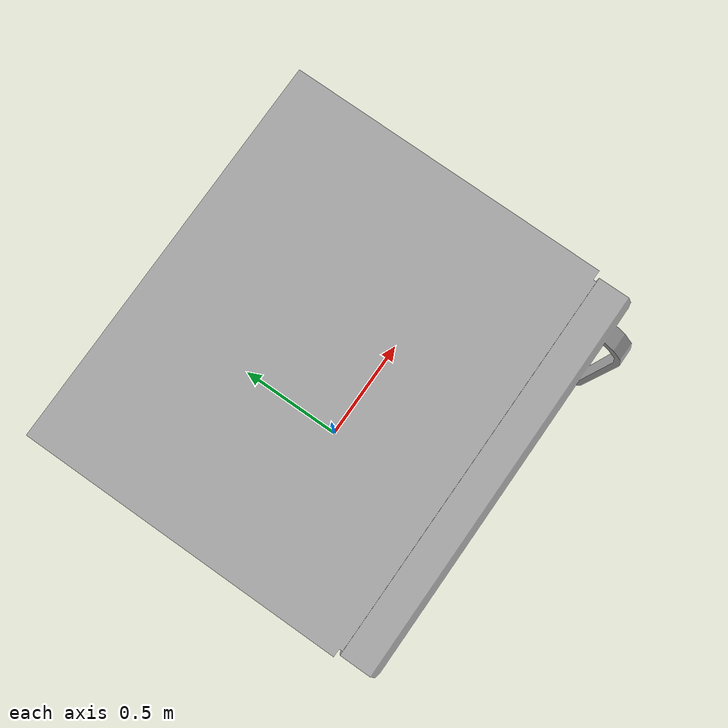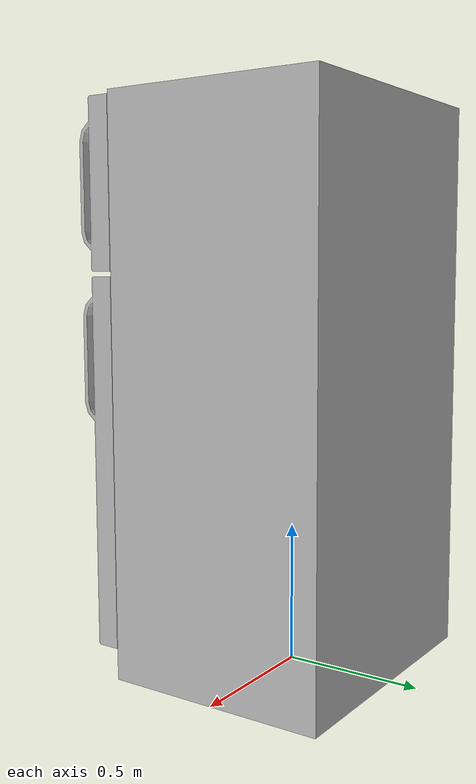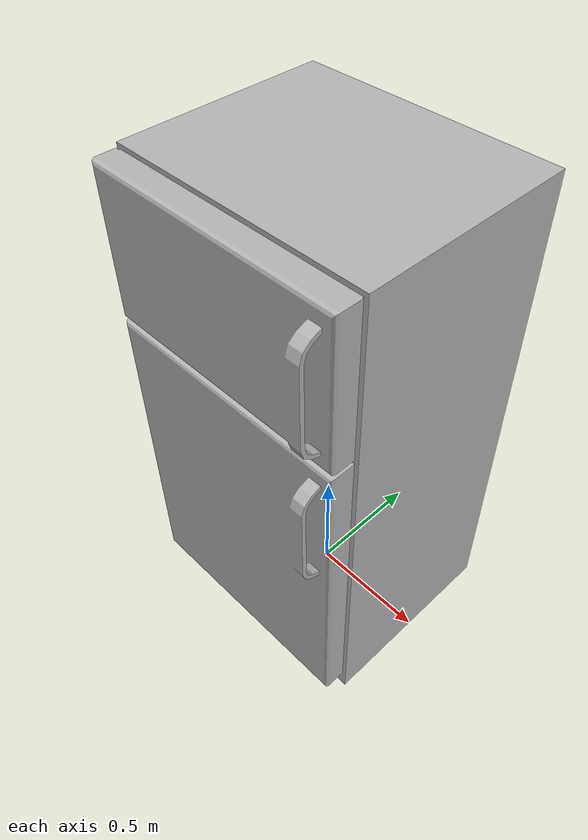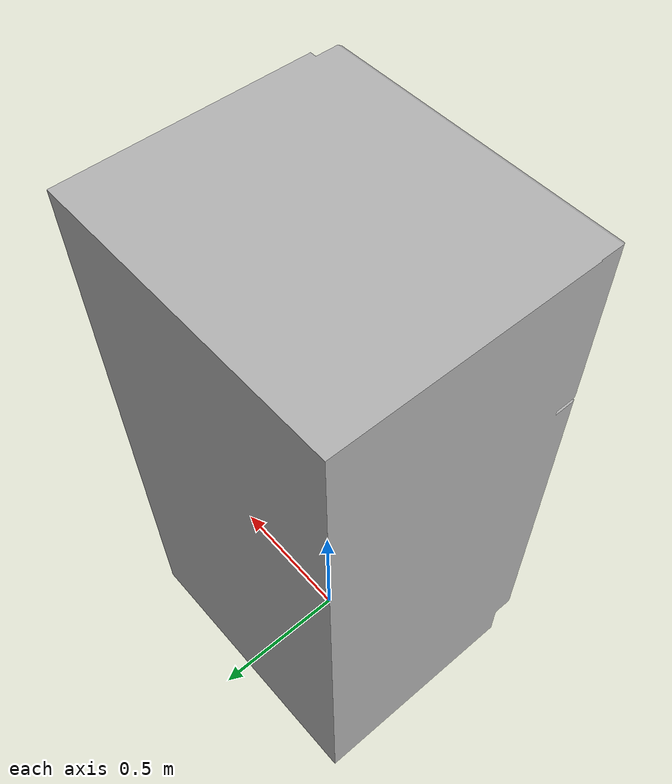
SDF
<?xml version='1.0'?>
<sdf version="1.4">
	<model name="fridge">
		<static>1</static>
		<link name="link">
			<visual name="mesh">
				<geometry>
					<mesh>
						<uri>model://meshes/fridge.dae</uri>
					</mesh>
				</geometry>
			</visual>
			<collision name="collider">
				<pose>0 -0.05 1 0 0 0</pose>
				<geometry>
					<box>
						<size>1 0.977 2</size>
					</box>
				</geometry>
			</collision>
		</link>
	</model>
</sdf>
